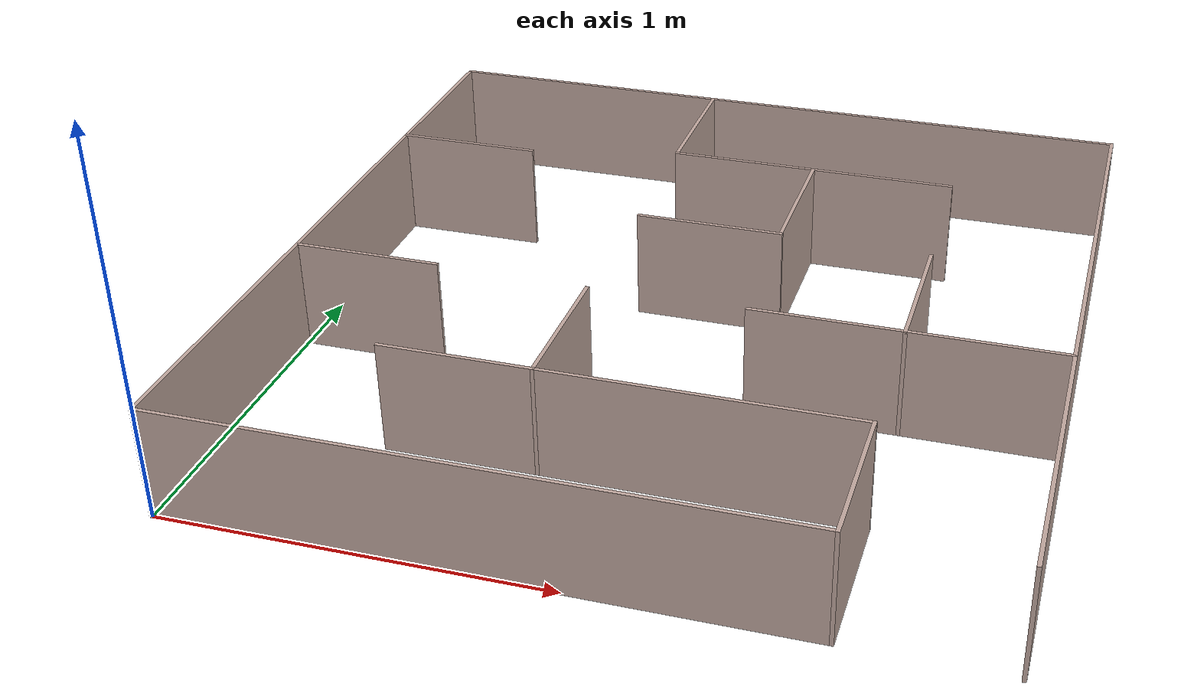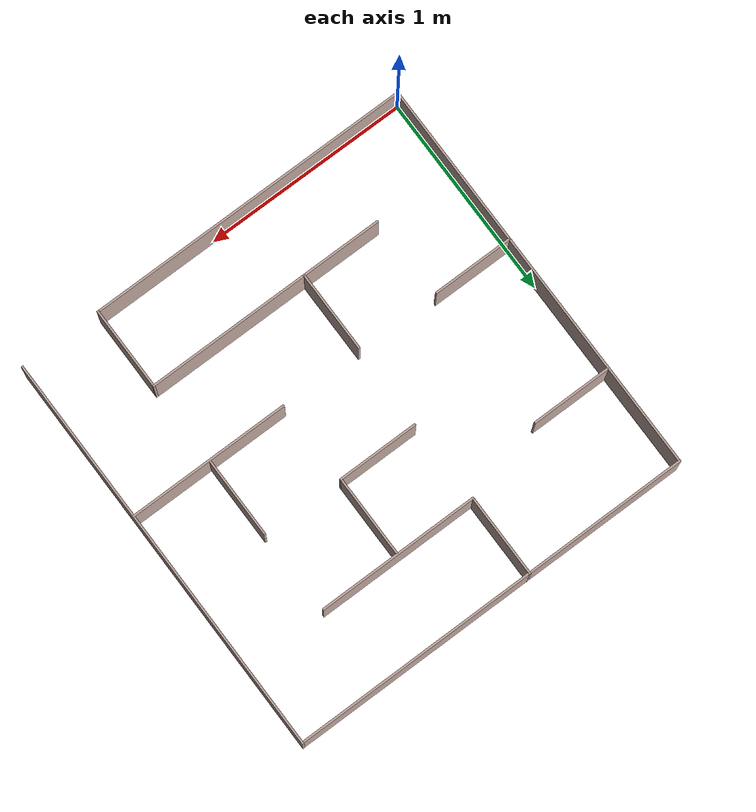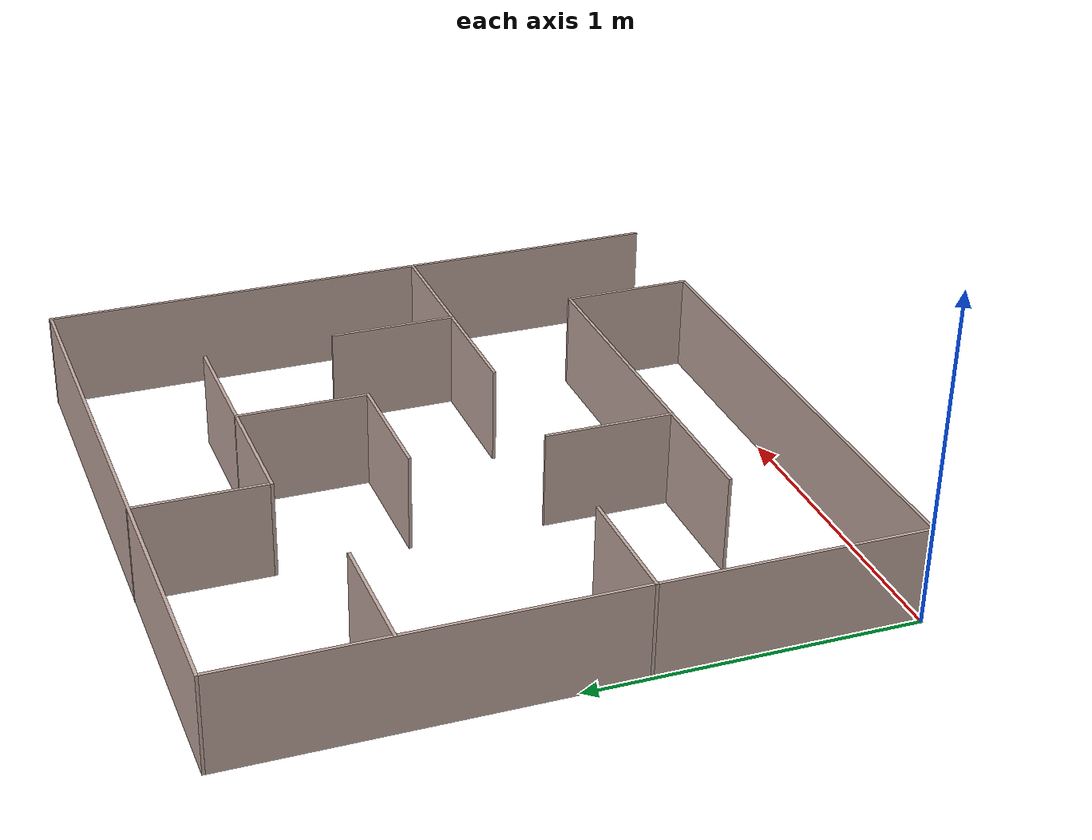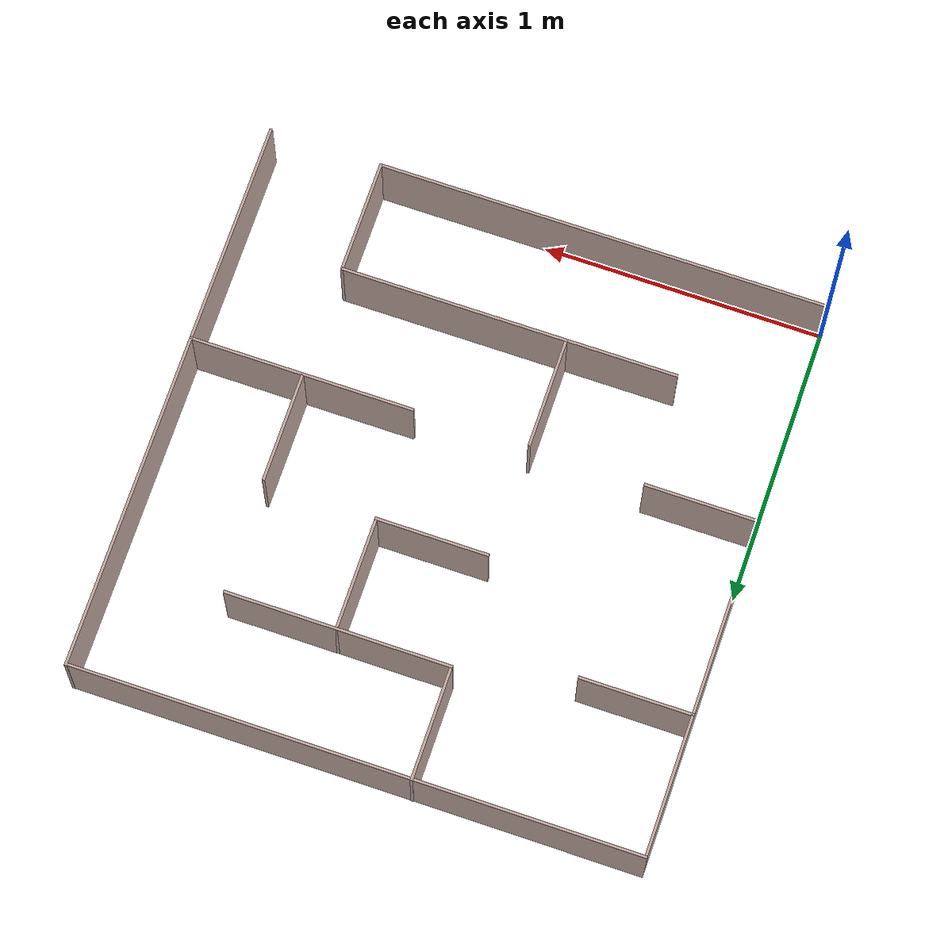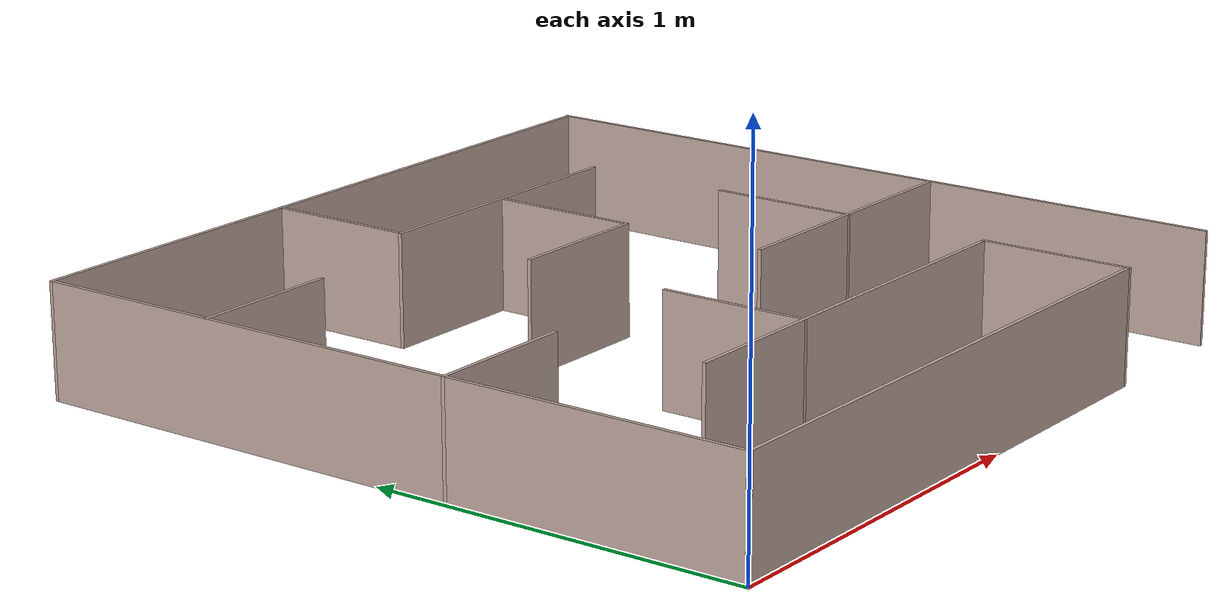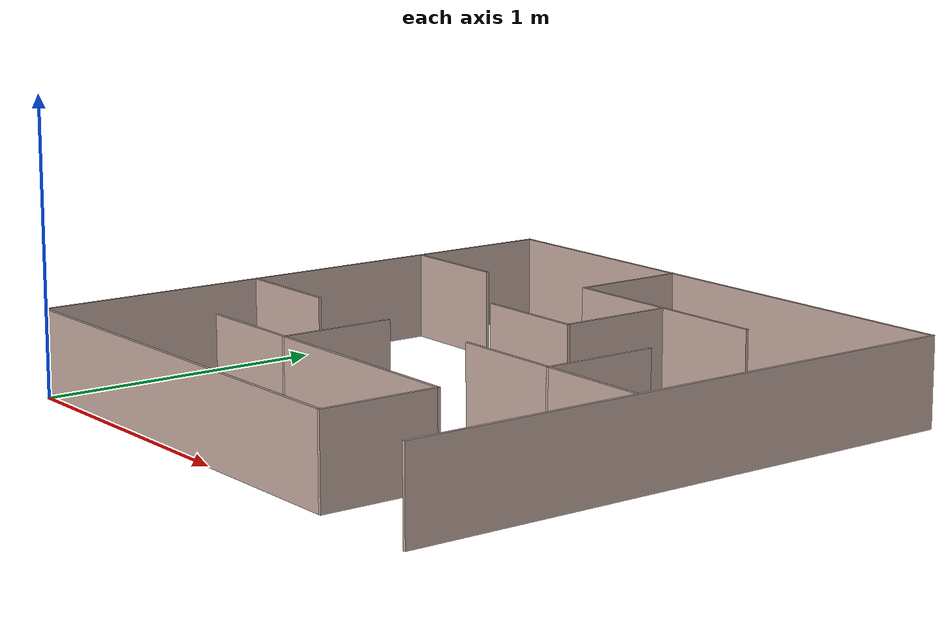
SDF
<?xml version='1.0'?>
<sdf version='1.7'>
  <model name='Labirinto_robo'>
    <pose>1 1 0 0 -0 0</pose>
    <link name='Wall_0'>
      <collision name='Wall_0_Collision'>
        <geometry>
          <box>
            <size>1.6 0.01 0.3</size>
          </box>
        </geometry>
        <pose>0 0 0.15 0 -0 0</pose>
      </collision>
      <visual name='Wall_0_Visual'>
        <pose>0 0 0.15 0 -0 0</pose>
        <geometry>
          <box>
            <size>1.6 0.01 0.3</size>
          </box>
        </geometry>
        <material>
          <script>
            <uri>file://media/materials/scripts/gazebo.material</uri>
            <name>Gazebo/Grey</name>
          </script>
          <ambient>0.760784 0.662745 0.627451 1</ambient>
        </material>
        <meta>
          <layer>0</layer>
        </meta>
      </visual>
      <pose>-0.205 -1 0 0 -0 0</pose>
    </link>
    <link name='Wall_10'>
      <collision name='Wall_10_Collision'>
        <geometry>
          <box>
            <size>0.41 0.01 0.3</size>
          </box>
        </geometry>
        <pose>0 0 0.15 0 -0 0</pose>
      </collision>
      <visual name='Wall_10_Visual'>
        <pose>0 0 0.15 0 -0 0</pose>
        <geometry>
          <box>
            <size>0.41 0.01 0.3</size>
          </box>
        </geometry>
        <material>
          <script>
            <uri>file://media/materials/scripts/gazebo.material</uri>
            <name>Gazebo/Grey</name>
          </script>
          <ambient>0.760784 0.662745 0.627451 1</ambient>
        </material>
        <meta>
          <layer>0</layer>
        </meta>
      </visual>
      <pose>0.6 -0.8 0 0 -0 1.5708</pose>
    </link>
    <link name='Wall_12'>
      <collision name='Wall_12_Collision'>
        <geometry>
          <box>
            <size>1.2 0.01 0.3</size>
          </box>
        </geometry>
        <pose>0 0 0.15 0 -0 0</pose>
      </collision>
      <visual name='Wall_12_Visual'>
        <pose>0 0 0.15 0 -0 0</pose>
        <geometry>
          <box>
            <size>1.2 0.01 0.3</size>
          </box>
        </geometry>
        <material>
          <script>
            <uri>file://media/materials/scripts/gazebo.material</uri>
            <name>Gazebo/Grey</name>
          </script>
          <ambient>0.760784 0.662745 0.627451 1</ambient>
        </material>
        <meta>
          <layer>0</layer>
        </meta>
      </visual>
      <pose>0.005 -0.6 0 0 -0 3.14159</pose>
    </link>
    <link name='Wall_14'>
      <collision name='Wall_14_Collision'>
        <geometry>
          <box>
            <size>0.4 0.01 0.3</size>
          </box>
        </geometry>
        <pose>0 0 0.15 0 -0 0</pose>
      </collision>
      <visual name='Wall_14_Visual'>
        <pose>0 0 0.15 0 -0 0</pose>
        <geometry>
          <box>
            <size>0.4 0.01 0.3</size>
          </box>
        </geometry>
        <material>
          <script>
            <uri>file://media/materials/scripts/gazebo.material</uri>
            <name>Gazebo/Grey</name>
          </script>
          <ambient>0.760784 0.662745 0.627451 1</ambient>
        </material>
        <meta>
          <layer>0</layer>
        </meta>
      </visual>
      <pose>-0.2 -0.405 0 0 -0 1.5708</pose>
    </link>
    <link name='Wall_16'>
      <collision name='Wall_16_Collision'>
        <geometry>
          <box>
            <size>0.4 0.01 0.3</size>
          </box>
        </geometry>
        <pose>0 0 0.15 0 -0 0</pose>
      </collision>
      <visual name='Wall_16_Visual'>
        <pose>0 0 0.15 0 -0 0</pose>
        <geometry>
          <box>
            <size>0.4 0.01 0.3</size>
          </box>
        </geometry>
        <material>
          <script>
            <uri>file://media/materials/scripts/gazebo.material</uri>
            <name>Gazebo/Grey</name>
          </script>
          <ambient>0.760784 0.662745 0.627451 1</ambient>
        </material>
        <meta>
          <layer>0</layer>
        </meta>
      </visual>
      <pose>-0.805 -0.2 0 0 -0 0</pose>
    </link>
    <link name='Wall_18'>
      <collision name='Wall_18_Collision'>
        <geometry>
          <box>
            <size>0.4 0.01 0.3</size>
          </box>
        </geometry>
        <pose>0 0 0.15 0 -0 0</pose>
      </collision>
      <visual name='Wall_18_Visual'>
        <pose>0 0 0.15 0 -0 0</pose>
        <geometry>
          <box>
            <size>0.4 0.01 0.3</size>
          </box>
        </geometry>
        <material>
          <script>
            <uri>file://media/materials/scripts/gazebo.material</uri>
            <name>Gazebo/Grey</name>
          </script>
          <ambient>0.760784 0.662745 0.627451 1</ambient>
        </material>
        <meta>
          <layer>0</layer>
        </meta>
      </visual>
      <pose>-0.805 0.5 0 0 -0 0</pose>
    </link>
    <link name='Wall_2'>
      <collision name='Wall_2_Collision'>
        <geometry>
          <box>
            <size>2 0.01 0.3</size>
          </box>
        </geometry>
        <pose>0 0 0.15 0 -0 0</pose>
      </collision>
      <visual name='Wall_2_Visual'>
        <pose>0 0 0.15 0 -0 0</pose>
        <geometry>
          <box>
            <size>2 0.01 0.3</size>
          </box>
        </geometry>
        <material>
          <script>
            <uri>file://media/materials/scripts/gazebo.material</uri>
            <name>Gazebo/Grey</name>
          </script>
          <ambient>0.760784 0.662745 0.627451 1</ambient>
        </material>
        <meta>
          <layer>0</layer>
        </meta>
      </visual>
      <pose>-1 -0.005 0 0 -0 1.5708</pose>
    </link>
    <link name='Wall_20'>
      <collision name='Wall_20_Collision'>
        <geometry>
          <box>
            <size>0.8 0.01 0.3</size>
          </box>
        </geometry>
        <pose>0 0 0.15 0 -0 0</pose>
      </collision>
      <visual name='Wall_20_Visual'>
        <pose>0 0 0.15 0 -0 0</pose>
        <geometry>
          <box>
            <size>0.8 0.01 0.3</size>
          </box>
        </geometry>
        <material>
          <script>
            <uri>file://media/materials/scripts/gazebo.material</uri>
            <name>Gazebo/Grey</name>
          </script>
          <ambient>0.760784 0.662745 0.627451 1</ambient>
        </material>
        <meta>
          <layer>0</layer>
        </meta>
      </visual>
      <pose>0.605 -0.2 0 0 -0 3.14159</pose>
    </link>
    <link name='Wall_22'>
      <collision name='Wall_22_Collision'>
        <geometry>
          <box>
            <size>0.4 0.01 0.3</size>
          </box>
        </geometry>
        <pose>0 0 0.15 0 -0 0</pose>
      </collision>
      <visual name='Wall_22_Visual'>
        <pose>0 0 0.15 0 -0 0</pose>
        <geometry>
          <box>
            <size>0.4 0.01 0.3</size>
          </box>
        </geometry>
        <material>
          <script>
            <uri>file://media/materials/scripts/gazebo.material</uri>
            <name>Gazebo/Grey</name>
          </script>
          <ambient>0.760784 0.662745 0.627451 1</ambient>
        </material>
        <meta>
          <layer>0</layer>
        </meta>
      </visual>
      <pose>0.6 -0.005 0 0 -0 1.5708</pose>
    </link>
    <link name='Wall_24'>
      <collision name='Wall_24_Collision'>
        <geometry>
          <box>
            <size>0.4 0.01 0.3</size>
          </box>
        </geometry>
        <pose>0 0 0.15 0 -0 0</pose>
      </collision>
      <visual name='Wall_24_Visual'>
        <pose>0 0 0.15 0 -0 0</pose>
        <geometry>
          <box>
            <size>0.4 0.01 0.3</size>
          </box>
        </geometry>
        <material>
          <script>
            <uri>file://media/materials/scripts/gazebo.material</uri>
            <name>Gazebo/Grey</name>
          </script>
          <ambient>0.760784 0.662745 0.627451 1</ambient>
        </material>
        <meta>
          <layer>0</layer>
        </meta>
      </visual>
      <pose>-0.2 0.805 0 0 -0 -1.5708</pose>
    </link>
    <link name='Wall_26'>
      <collision name='Wall_26_Collision'>
        <geometry>
          <box>
            <size>0.8 0.01 0.3</size>
          </box>
        </geometry>
        <pose>0 0 0.15 0 -0 0</pose>
      </collision>
      <visual name='Wall_26_Visual'>
        <pose>0 0 0.15 0 -0 0</pose>
        <geometry>
          <box>
            <size>0.8 0.01 0.3</size>
          </box>
        </geometry>
        <material>
          <script>
            <uri>file://media/materials/scripts/gazebo.material</uri>
            <name>Gazebo/Grey</name>
          </script>
          <ambient>0.760784 0.662745 0.627451 1</ambient>
        </material>
        <meta>
          <layer>0</layer>
        </meta>
      </visual>
      <pose>0.195 0.6 0 0 -0 0</pose>
    </link>
    <link name='Wall_28'>
      <collision name='Wall_28_Collision'>
        <geometry>
          <box>
            <size>0.4 0.01 0.3</size>
          </box>
        </geometry>
        <pose>0 0 0.15 0 -0 0</pose>
      </collision>
      <visual name='Wall_28_Visual'>
        <pose>0 0 0.15 0 -0 0</pose>
        <geometry>
          <box>
            <size>0.4 0.01 0.3</size>
          </box>
        </geometry>
        <material>
          <script>
            <uri>file://media/materials/scripts/gazebo.material</uri>
            <name>Gazebo/Grey</name>
          </script>
          <ambient>0.760784 0.662745 0.627451 1</ambient>
        </material>
        <meta>
          <layer>0</layer>
        </meta>
      </visual>
      <pose>0.2 0.405 0 0 -0 -1.5708</pose>
    </link>
    <link name='Wall_30'>
      <collision name='Wall_30_Collision'>
        <geometry>
          <box>
            <size>0.4 0.01 0.3</size>
          </box>
        </geometry>
        <pose>0 0 0.15 0 -0 0</pose>
      </collision>
      <visual name='Wall_30_Visual'>
        <pose>0 0 0.15 0 -0 0</pose>
        <geometry>
          <box>
            <size>0.4 0.01 0.3</size>
          </box>
        </geometry>
        <material>
          <script>
            <uri>file://media/materials/scripts/gazebo.material</uri>
            <name>Gazebo/Grey</name>
          </script>
          <ambient>0.760784 0.662745 0.627451 1</ambient>
        </material>
        <meta>
          <layer>0</layer>
        </meta>
      </visual>
      <pose>0.005 0.2 0 0 -0 3.14159</pose>
    </link>
    <link name='Wall_6'>
      <collision name='Wall_6_Collision'>
        <geometry>
          <box>
            <size>2.01 0.01 0.3</size>
          </box>
        </geometry>
        <pose>0 0 0.15 0 -0 0</pose>
      </collision>
      <visual name='Wall_6_Visual'>
        <pose>0 0 0.15 0 -0 0</pose>
        <geometry>
          <box>
            <size>2.01 0.01 0.3</size>
          </box>
        </geometry>
        <material>
          <script>
            <uri>file://media/materials/scripts/gazebo.material</uri>
            <name>Gazebo/Grey</name>
          </script>
          <ambient>0.760784 0.662745 0.627451 1</ambient>
        </material>
        <meta>
          <layer>0</layer>
        </meta>
      </visual>
      <pose>1 0 0 0 -0 1.5708</pose>
    </link>
    <link name='Wall_8'>
      <collision name='Wall_8_Collision'>
        <geometry>
          <box>
            <size>2 0.01 0.3</size>
          </box>
        </geometry>
        <pose>0 0 0.15 0 -0 0</pose>
      </collision>
      <visual name='Wall_8_Visual'>
        <pose>0 0 0.15 0 -0 0</pose>
        <geometry>
          <box>
            <size>2 0.01 0.3</size>
          </box>
        </geometry>
        <material>
          <script>
            <uri>file://media/materials/scripts/gazebo.material</uri>
            <name>Gazebo/Grey</name>
          </script>
          <ambient>0.760784 0.662745 0.627451 1</ambient>
        </material>
        <meta>
          <layer>0</layer>
        </meta>
      </visual>
      <pose>-0.005 0.999 0 0 -0 0</pose>
    </link>
    <static>1</static>
  </model>
</sdf>
